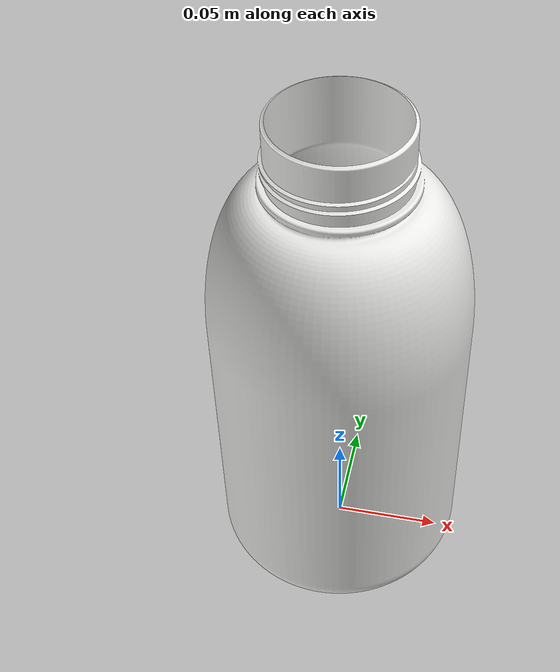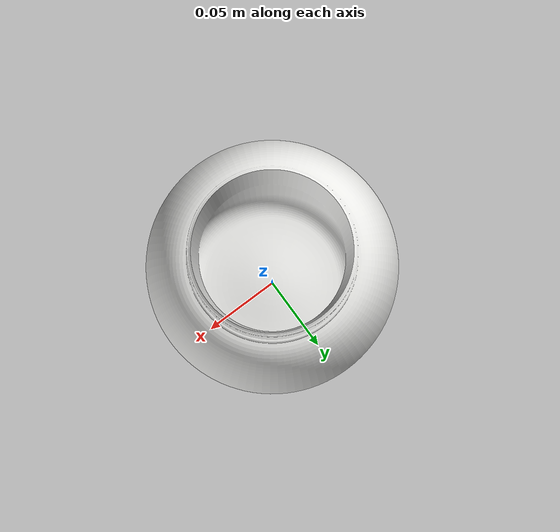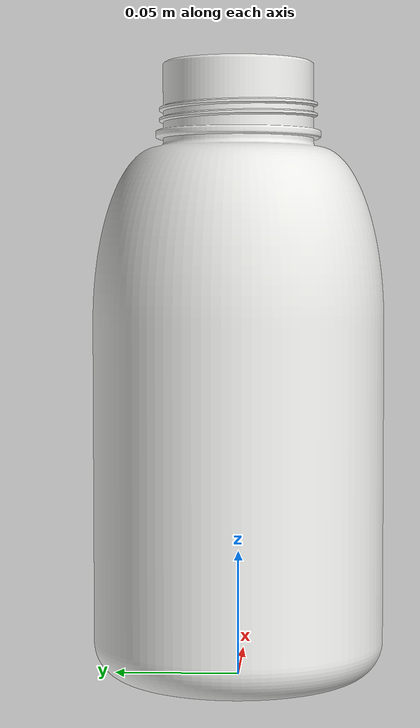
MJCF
<mujoco model="bottle_2l">
  <asset>
    <mesh name="bottle_2l_00" file="bottle_2l_00.obj" inertia="exact"/>
  </asset>
  <worldbody>
    <body name="bottle_2l">
      <geom type="mesh" mesh="bottle_2l_00" rgba="0.920 0.920 0.910 1.000" density="950"/>  <!-- HDPE_blanco_satinado -->
    </body>
  </worldbody>
</mujoco>
